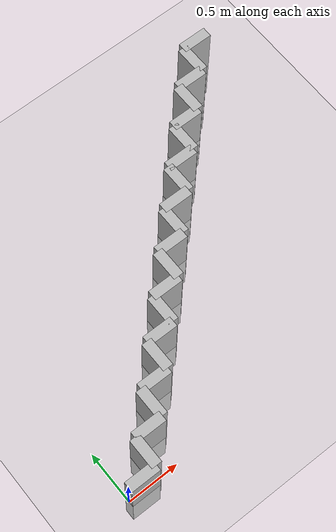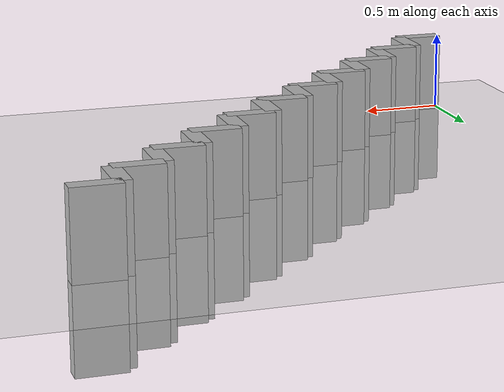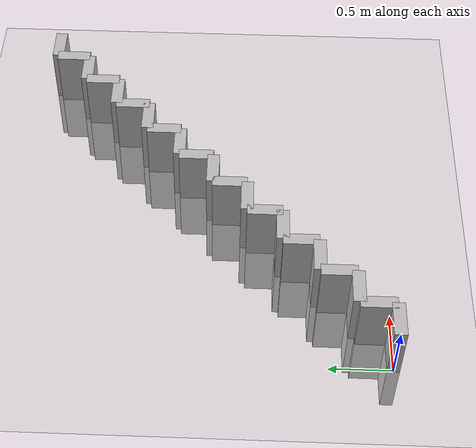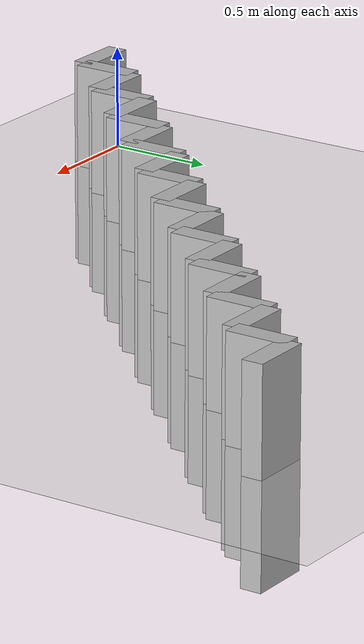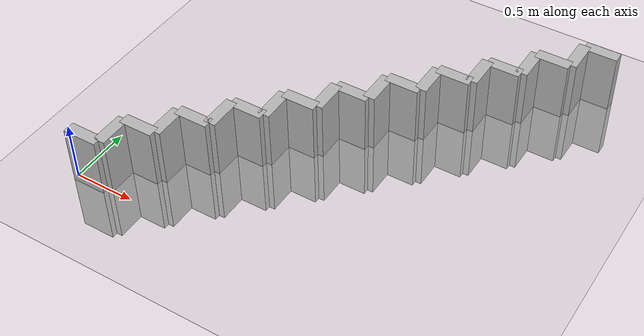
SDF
<?xml version="1.0" ?>
<sdf version="1.6">
  <world name="default">
    <include>
      <uri>model://ground_plane</uri>
    </include>
    <include>
      <uri>model://sun</uri>
    </include>

    <model name="wall_0">
      <static>true</static>
      <link name="link">
        <pose>0.14285714285714285 0 0 0 0 0</pose>
        <collision name="collision">
          <geometry>
            <box>
              <size>0.2857142857142857 0.1 1.0</size>
            </box>
          </geometry>
        </collision>
        <visual name="visual">
          <geometry>
            <box>
              <size>0.2857142857142857 0.1 1.0</size>
            </box>
          </geometry>
        </visual>
      </link>
    </model>

    <model name="wall_1">
      <static>true</static>
      <link name="link">
        <pose>0.2857142857142857 0.14285714285714285 0 0 0 1.57</pose>
        <collision name="collision">
          <geometry>
            <box>
              <size>0.2857142857142857 0.1 1.0</size>
            </box>
          </geometry>
        </collision>
        <visual name="visual">
          <geometry>
            <box>
              <size>0.2857142857142857 0.1 1.0</size>
            </box>
          </geometry>
        </visual>
      </link>
    </model>

    <model name="wall_2">
      <static>true</static>
      <link name="link">
        <pose>0.42857142857142855 0.2857142857142857 0 0 0 0</pose>
        <collision name="collision">
          <geometry>
            <box>
              <size>0.2857142857142857 0.1 1.0</size>
            </box>
          </geometry>
        </collision>
        <visual name="visual">
          <geometry>
            <box>
              <size>0.2857142857142857 0.1 1.0</size>
            </box>
          </geometry>
        </visual>
      </link>
    </model>

    <model name="wall_3">
      <static>true</static>
      <link name="link">
        <pose>0.5714285714285714 0.42857142857142855 0 0 0 1.57</pose>
        <collision name="collision">
          <geometry>
            <box>
              <size>0.2857142857142857 0.1 1.0</size>
            </box>
          </geometry>
        </collision>
        <visual name="visual">
          <geometry>
            <box>
              <size>0.2857142857142857 0.1 1.0</size>
            </box>
          </geometry>
        </visual>
      </link>
    </model>

    <model name="wall_4">
      <static>true</static>
      <link name="link">
        <pose>0.7142857142857142 0.5714285714285714 0 0 0 0</pose>
        <collision name="collision">
          <geometry>
            <box>
              <size>0.2857142857142857 0.1 1.0</size>
            </box>
          </geometry>
        </collision>
        <visual name="visual">
          <geometry>
            <box>
              <size>0.2857142857142857 0.1 1.0</size>
            </box>
          </geometry>
        </visual>
      </link>
    </model>

    <model name="wall_5">
      <static>true</static>
      <link name="link">
        <pose>0.857142857142857 0.7142857142857142 0 0 0 1.57</pose>
        <collision name="collision">
          <geometry>
            <box>
              <size>0.2857142857142857 0.1 1.0</size>
            </box>
          </geometry>
        </collision>
        <visual name="visual">
          <geometry>
            <box>
              <size>0.2857142857142857 0.1 1.0</size>
            </box>
          </geometry>
        </visual>
      </link>
    </model>

    <model name="wall_6">
      <static>true</static>
      <link name="link">
        <pose>0.9999999999999998 0.857142857142857 0 0 0 0</pose>
        <collision name="collision">
          <geometry>
            <box>
              <size>0.2857142857142857 0.1 1.0</size>
            </box>
          </geometry>
        </collision>
        <visual name="visual">
          <geometry>
            <box>
              <size>0.2857142857142857 0.1 1.0</size>
            </box>
          </geometry>
        </visual>
      </link>
    </model>

    <model name="wall_7">
      <static>true</static>
      <link name="link">
        <pose>1.1428571428571426 0.9999999999999998 0 0 0 1.57</pose>
        <collision name="collision">
          <geometry>
            <box>
              <size>0.2857142857142857 0.1 1.0</size>
            </box>
          </geometry>
        </collision>
        <visual name="visual">
          <geometry>
            <box>
              <size>0.2857142857142857 0.1 1.0</size>
            </box>
          </geometry>
        </visual>
      </link>
    </model>

    <model name="wall_8">
      <static>true</static>
      <link name="link">
        <pose>1.2857142857142854 1.1428571428571426 0 0 0 0</pose>
        <collision name="collision">
          <geometry>
            <box>
              <size>0.2857142857142857 0.1 1.0</size>
            </box>
          </geometry>
        </collision>
        <visual name="visual">
          <geometry>
            <box>
              <size>0.2857142857142857 0.1 1.0</size>
            </box>
          </geometry>
        </visual>
      </link>
    </model>

    <model name="wall_9">
      <static>true</static>
      <link name="link">
        <pose>1.4285714285714282 1.2857142857142854 0 0 0 1.57</pose>
        <collision name="collision">
          <geometry>
            <box>
              <size>0.2857142857142857 0.1 1.0</size>
            </box>
          </geometry>
        </collision>
        <visual name="visual">
          <geometry>
            <box>
              <size>0.2857142857142857 0.1 1.0</size>
            </box>
          </geometry>
        </visual>
      </link>
    </model>

    <model name="wall_10">
      <static>true</static>
      <link name="link">
        <pose>1.571428571428571 1.4285714285714282 0 0 0 0</pose>
        <collision name="collision">
          <geometry>
            <box>
              <size>0.2857142857142857 0.1 1.0</size>
            </box>
          </geometry>
        </collision>
        <visual name="visual">
          <geometry>
            <box>
              <size>0.2857142857142857 0.1 1.0</size>
            </box>
          </geometry>
        </visual>
      </link>
    </model>

    <model name="wall_11">
      <static>true</static>
      <link name="link">
        <pose>1.7142857142857137 1.571428571428571 0 0 0 1.57</pose>
        <collision name="collision">
          <geometry>
            <box>
              <size>0.2857142857142857 0.1 1.0</size>
            </box>
          </geometry>
        </collision>
        <visual name="visual">
          <geometry>
            <box>
              <size>0.2857142857142857 0.1 1.0</size>
            </box>
          </geometry>
        </visual>
      </link>
    </model>

    <model name="wall_12">
      <static>true</static>
      <link name="link">
        <pose>1.8571428571428565 1.7142857142857137 0 0 0 0</pose>
        <collision name="collision">
          <geometry>
            <box>
              <size>0.2857142857142857 0.1 1.0</size>
            </box>
          </geometry>
        </collision>
        <visual name="visual">
          <geometry>
            <box>
              <size>0.2857142857142857 0.1 1.0</size>
            </box>
          </geometry>
        </visual>
      </link>
    </model>

    <model name="wall_13">
      <static>true</static>
      <link name="link">
        <pose>1.9999999999999993 1.8571428571428565 0 0 0 1.57</pose>
        <collision name="collision">
          <geometry>
            <box>
              <size>0.2857142857142857 0.1 1.0</size>
            </box>
          </geometry>
        </collision>
        <visual name="visual">
          <geometry>
            <box>
              <size>0.2857142857142857 0.1 1.0</size>
            </box>
          </geometry>
        </visual>
      </link>
    </model>

    <model name="wall_14">
      <static>true</static>
      <link name="link">
        <pose>2.1428571428571423 1.9999999999999993 0 0 0 0</pose>
        <collision name="collision">
          <geometry>
            <box>
              <size>0.2857142857142857 0.1 1.0</size>
            </box>
          </geometry>
        </collision>
        <visual name="visual">
          <geometry>
            <box>
              <size>0.2857142857142857 0.1 1.0</size>
            </box>
          </geometry>
        </visual>
      </link>
    </model>

    <model name="wall_15">
      <static>true</static>
      <link name="link">
        <pose>2.285714285714285 2.1428571428571423 0 0 0 1.57</pose>
        <collision name="collision">
          <geometry>
            <box>
              <size>0.2857142857142857 0.1 1.0</size>
            </box>
          </geometry>
        </collision>
        <visual name="visual">
          <geometry>
            <box>
              <size>0.2857142857142857 0.1 1.0</size>
            </box>
          </geometry>
        </visual>
      </link>
    </model>

    <model name="wall_16">
      <static>true</static>
      <link name="link">
        <pose>2.428571428571428 2.285714285714285 0 0 0 0</pose>
        <collision name="collision">
          <geometry>
            <box>
              <size>0.2857142857142857 0.1 1.0</size>
            </box>
          </geometry>
        </collision>
        <visual name="visual">
          <geometry>
            <box>
              <size>0.2857142857142857 0.1 1.0</size>
            </box>
          </geometry>
        </visual>
      </link>
    </model>

    <model name="wall_17">
      <static>true</static>
      <link name="link">
        <pose>2.5714285714285707 2.428571428571428 0 0 0 1.57</pose>
        <collision name="collision">
          <geometry>
            <box>
              <size>0.2857142857142857 0.1 1.0</size>
            </box>
          </geometry>
        </collision>
        <visual name="visual">
          <geometry>
            <box>
              <size>0.2857142857142857 0.1 1.0</size>
            </box>
          </geometry>
        </visual>
      </link>
    </model>

    <model name="wall_18">
      <static>true</static>
      <link name="link">
        <pose>2.7142857142857135 2.5714285714285707 0 0 0 0</pose>
        <collision name="collision">
          <geometry>
            <box>
              <size>0.2857142857142857 0.1 1.0</size>
            </box>
          </geometry>
        </collision>
        <visual name="visual">
          <geometry>
            <box>
              <size>0.2857142857142857 0.1 1.0</size>
            </box>
          </geometry>
        </visual>
      </link>
    </model>

    <model name="wall_19">
      <static>true</static>
      <link name="link">
        <pose>2.8571428571428563 2.7142857142857135 0 0 0 1.57</pose>
        <collision name="collision">
          <geometry>
            <box>
              <size>0.2857142857142857 0.1 1.0</size>
            </box>
          </geometry>
        </collision>
        <visual name="visual">
          <geometry>
            <box>
              <size>0.2857142857142857 0.1 1.0</size>
            </box>
          </geometry>
        </visual>
      </link>
    </model>

    <model name="wall_20">
      <static>true</static>
      <link name="link">
        <pose>2.999999999999999 2.8571428571428563 0 0 0 0</pose>
        <collision name="collision">
          <geometry>
            <box>
              <size>0.2857142857142857 0.1 1.0</size>
            </box>
          </geometry>
        </collision>
        <visual name="visual">
          <geometry>
            <box>
              <size>0.2857142857142857 0.1 1.0</size>
            </box>
          </geometry>
        </visual>
      </link>
    </model>

  </world>
</sdf>
